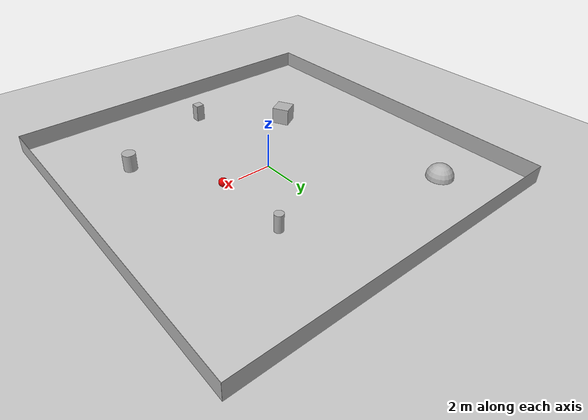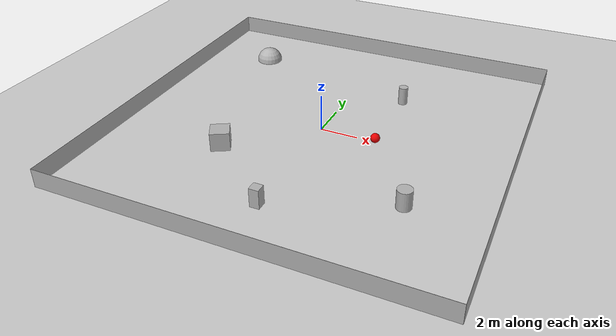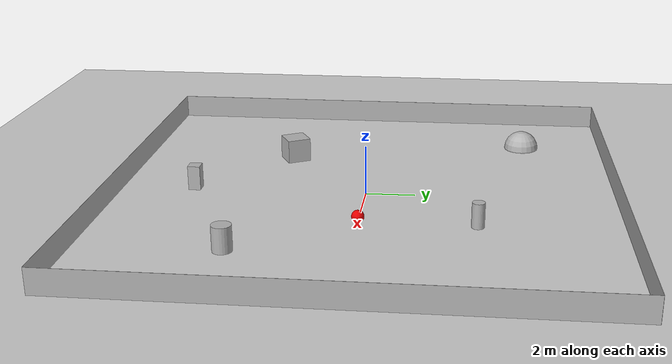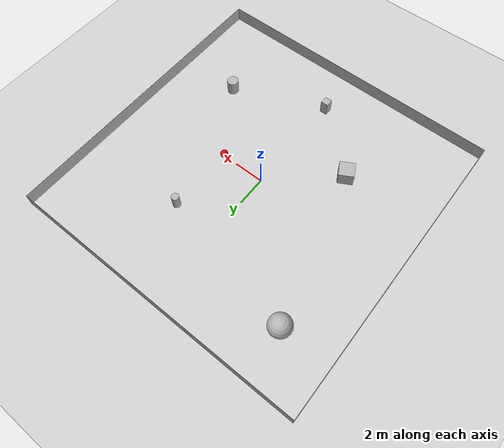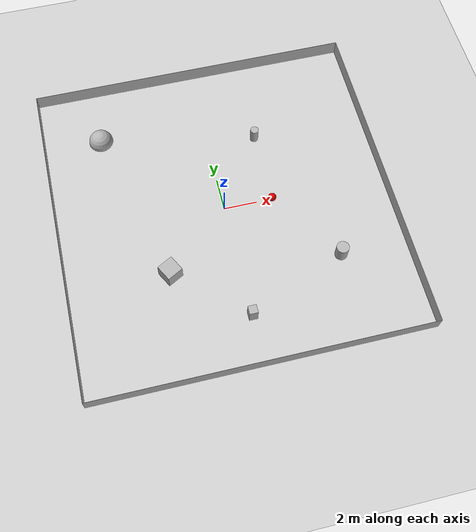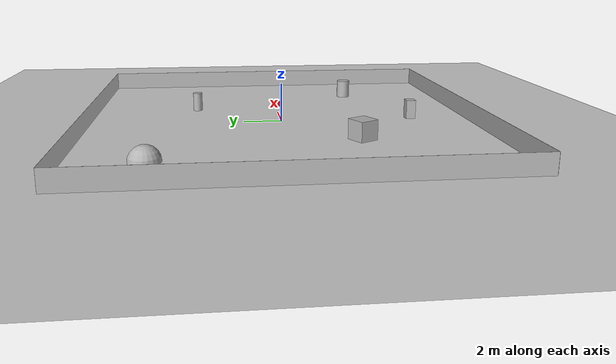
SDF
<sdf version="1.10">
 <world name="default">
  <physics type="ode">
   <max_step_size>0.0040000000000000001</max_step_size>
   <real_time_factor>1</real_time_factor>
   <real_time_update_rate>250</real_time_update_rate>
  </physics>
  <plugin name="gz::sim::systems::Physics" filename="gz-sim-physics-system"/>
  <plugin name="gz::sim::systems::UserCommands" filename="gz-sim-user-commands-system"/>
  <plugin name="gz::sim::systems::SceneBroadcaster" filename="gz-sim-scene-broadcaster-system"/>
  <plugin name="gz::sim::systems::Contact" filename="gz-sim-contact-system"/>
  <plugin name="gz::sim::systems::Imu" filename="gz-sim-imu-system"/>
  <plugin name="gz::sim::systems::Magnetometer" filename="gz-sim-magnetometer-system"/>
  <plugin name="gz::sim::systems::Altimeter" filename="gz-sim-altimeter-system"/>
  <plugin name="gz::sim::systems::NavSat" filename="gz-sim-navsat-system"/>
  <plugin name="gz::sim::systems::Sensors" filename="gz-sim-sensors-system">
   <render_engine>ogre2</render_engine>
  </plugin>
  <gravity>0 0 -9.8000000000000007</gravity>
  <magnetic_field>6.0000000000000002e-06 2.3e-05 -4.1999999999999998e-05</magnetic_field>
  <atmosphere type="adiabatic"/>
  <spherical_coordinates>
   <surface_model>EARTH_WGS84</surface_model>
   <latitude_deg>39.79480109851339</latitude_deg>
   <longitude_deg>-84.08631702793322</longitude_deg>
   <elevation>265.2</elevation>
   <heading_deg>0</heading_deg>
  </spherical_coordinates>
  <scene>
   <grid>true</grid>
   <ambient>0.400000006 0.400000006 0.400000006 1</ambient>
   <background>0.699999988 0.699999988 0.699999988 1</background>
   <shadows>false</shadows>
  </scene>
  <model name="ground_plane">
   <static>true</static>
   <link name="link">
    <collision name="collision">
     <geometry><plane><normal>0 0 1</normal><size>1 1</size></plane></geometry>
    </collision>
    <visual name="visual">
     <geometry><plane><normal>0 0 1</normal><size>100 100</size></plane></geometry>
     <material>
      <ambient>0.800000012 0.800000012 0.800000012 1</ambient>
      <diffuse>0.800000012 0.800000012 0.800000012 1</diffuse>
      <specular>0.800000012 0.800000012 0.800000012 1</specular>
     </material>
    </visual>
    <inertial>
     <mass>1</mass>
     <inertia><ixx>1</ixx><ixy>0</ixy><ixz>0</ixz><iyy>1</iyy><iyz>0</iyz><izz>1</izz></inertia>
    </inertial>
   </link>
  </model>
  <model name="ball">
   <static>false</static>
   <link name="link">
    <collision name="collision"><geometry><sphere><radius>.25</radius></sphere></geometry></collision>
    <visual name="visual">
     <geometry><sphere><radius>.25</radius></sphere></geometry>
     <material><ambient>0.9 0 0 1</ambient><diffuse>0.9 0 0 1</diffuse><specular>0.9 0 0 1</specular></material>
    </visual>
    <inertial>
     <mass>.025</mass>
     <inertia><ixx>.00001</ixx><ixy>0</ixy><ixz>0</ixz><iyy>.00001</iyy><iyz>0</iyz><izz>.00001</izz></inertia>
    </inertial>
   </link>
   <pose>3 0 .25 0 0 0</pose>
  </model>
  <model name="wall_1">
   <pose>-10 0 .5 0 0 -1.57</pose>
   <static>true</static>
   <link name="link">
    <collision name="collision"><geometry><box><size>20 .01 1</size></box></geometry></collision>
    <visual name="visual">
     <geometry><box><size>20 .01 1</size></box></geometry>
     <material>
      <ambient>0.7 0.7 0.7 1</ambient>
      <diffuse>0.7 0.7 0.7 1</diffuse>
      <specular>0.7 0.7 0.7 1</specular>
     </material>
    </visual>
    <inertial>
     <mass>1</mass>
     <inertia><ixx>1</ixx><ixy>0</ixy><ixz>0</ixz><iyy>1</iyy><iyz>0</iyz><izz>1</izz></inertia>
    </inertial>
   </link>
  </model>
  <model name="wall_2">
   <pose>10 0 .5 0 0 -1.57</pose>
   <static>true</static>
   <link name="link">
    <collision name="collision"><geometry><box><size>20 .01 1</size></box></geometry></collision>
    <visual name="visual">
     <geometry><box><size>20 .01 1</size></box></geometry>
     <material>
      <ambient>0.7 0.7 0.7 1</ambient>
      <diffuse>0.7 0.7 0.7 1</diffuse>
      <specular>0.7 0.7 0.7 1</specular>
     </material>
    </visual>
    <inertial>
     <mass>1</mass>
     <inertia><ixx>1</ixx><ixy>0</ixy><ixz>0</ixz><iyy>1</iyy><iyz>0</iyz><izz>1</izz></inertia>
    </inertial>
   </link>
  </model>
  <model name="wall_3">
   <pose>0 10 .5 0 0 0</pose>
   <static>true</static>
   <link name="link">
    <collision name="collision"><geometry><box><size>20 .01 1</size></box></geometry></collision>
    <visual name="visual">
     <geometry><box><size>20 .01 1</size></box></geometry>
     <material>
      <ambient>0.7 0.7 0.7 1</ambient>
      <diffuse>0.7 0.7 0.7 1</diffuse>
      <specular>0.7 0.7 0.7 1</specular>
     </material>
    </visual>
    <inertial>
     <mass>1</mass>
     <inertia><ixx>1</ixx><ixy>0</ixy><ixz>0</ixz><iyy>1</iyy><iyz>0</iyz><izz>1</izz></inertia>
    </inertial>
   </link>
  </model>
  <model name="wall_4">
   <pose>0 -10 .5 0 0 0</pose>
   <static>true</static>
   <link name="link">
    <collision name="collision"><geometry><box><size>20 .01 1</size></box></geometry></collision>
    <visual name="visual">
     <geometry><box><size>20 .01 1</size></box></geometry>
     <material>
      <ambient>0.7 0.7 0.7 1</ambient>
      <diffuse>0.7 0.7 0.7 1</diffuse>
      <specular>0.7 0.7 0.7 1</specular>
     </material>
    </visual>
    <inertial>
     <mass>1</mass>
     <inertia><ixx>1</ixx><ixy>0</ixy><ixz>0</ixz><iyy>1</iyy><iyz>0</iyz><izz>1</izz></inertia>
    </inertial>
   </link>
  </model>
  <model name="cube_1">
   <pose>-4 -3.5 .5 0 0 .5</pose>
   <static>true</static>
   <link name="link">
    <collision name="collision"><geometry><box><size>1 1 1</size></box></geometry></collision>
    <visual name="visual">
     <geometry><box><size>1 1 1</size></box></geometry>
     <material>
      <ambient>0.7 0.7 0.7 1</ambient>
      <diffuse>0.7 0.7 0.7 1</diffuse>
      <specular>0.7 0.7 0.7 1</specular>
     </material>
    </visual>
    <inertial>
     <mass>1</mass>
     <inertia><ixx>1</ixx><ixy>0</ixy><ixz>0</ixz><iyy>1</iyy><iyz>0</iyz><izz>1</izz></inertia>
    </inertial>
   </link>
  </model>
  <model name="cube_2">
   <pose>0 -7 .5 0 0 0</pose>
   <static>true</static>
   <link name="link">
    <collision name="collision"><geometry><box><size>.5 .5 1</size></box></geometry></collision>
    <visual name="visual">
     <geometry><box><size>.5 .5 1</size></box></geometry>
     <material>
      <ambient>0.7 0.7 0.7 1</ambient>
      <diffuse>0.7 0.7 0.7 1</diffuse>
      <specular>0.7 0.7 0.7 1</specular>
     </material>
    </visual>
    <inertial>
     <mass>1</mass>
     <inertia><ixx>1</ixx><ixy>0</ixy><ixz>0</ixz><iyy>1</iyy><iyz>0</iyz><izz>1</izz></inertia>
    </inertial>
   </link>
  </model>
  <model name="cylinder_1">
   <pose>6 -4.5 .5 0 0 0</pose>
   <static>true</static>
   <link name="link">
    <collision name="collision">
     <geometry><cylinder><length>1</length><radius>.375</radius></cylinder></geometry>
    </collision>
    <visual name="visual">
     <geometry><cylinder><length>1</length><radius>.375</radius></cylinder></geometry>
     <material>
      <ambient>0.7 0.7 0.7 1</ambient>
      <diffuse>0.7 0.7 0.7 1</diffuse>
      <specular>0.7 0.7 0.7 1</specular>
     </material>
    </visual>
    <inertial>
     <mass>1</mass>
     <inertia><ixx>1</ixx><ixy>0</ixy><ixz>0</ixz><iyy>1</iyy><iyz>0</iyz><izz>1</izz></inertia>
    </inertial>
   </link>
  </model>
  <model name="cylinder_2">
   <pose>3 4.5 .5 0 0 0</pose>
   <static>true</static>
   <link name="link">
    <collision name="collision">
     <geometry><cylinder><length>1</length><radius>.25</radius></cylinder></geometry>
    </collision>
    <visual name="visual">
     <geometry><cylinder><length>1</length><radius>.25</radius></cylinder></geometry>
     <material>
      <ambient>0.7 0.7 0.7 1</ambient>
      <diffuse>0.7 0.7 0.7 1</diffuse>
      <specular>0.7 0.7 0.7 1</specular>
     </material>
    </visual>
    <inertial>
     <mass>1</mass>
     <inertia><ixx>1</ixx><ixy>0</ixy><ixz>0</ixz><iyy>1</iyy><iyz>0</iyz><izz>1</izz></inertia>
    </inertial>
   </link>
  </model>
  <model name="sphere_1">
   <pose>-6.5 6.5 0 0 0 0</pose>
   <static>true</static>
   <link name="link">
    <collision name="collision"><geometry><sphere><radius>.75</radius></sphere></geometry></collision>
    <visual name="visual">
     <geometry><sphere><radius>.75</radius></sphere></geometry>
     <material>
      <ambient>0.7 0.7 0.7 1</ambient>
      <diffuse>0.7 0.7 0.7 1</diffuse>
      <specular>0.7 0.7 0.7 1</specular>
     </material>
    </visual>
    <inertial>
     <mass>1</mass>
     <inertia><ixx>1</ixx><ixy>0</ixy><ixz>0</ixz><iyy>1</iyy><iyz>0</iyz><izz>1</izz></inertia>
    </inertial>
   </link>
  </model>
  <light name="sunUTC" type="directional">
   <pose>0 0 500 0 0 0</pose>
   <cast_shadows>false</cast_shadows>
   <intensity>1</intensity>
   <direction>0.001 0.625 -0.78000000000000003</direction>
   <diffuse>0.903999984 0.903999984 0.903999984 1</diffuse>
   <specular>0.270999998 0.270999998 0.270999998 1</specular>
   <attenuation><range>2000</range><linear>0</linear><constant>1</constant><quadratic>0</quadratic></attenuation>
   <spot><inner_angle>0</inner_angle><outer_angle>0</outer_angle><falloff>0</falloff></spot>
  </light>
 </world>
</sdf>
